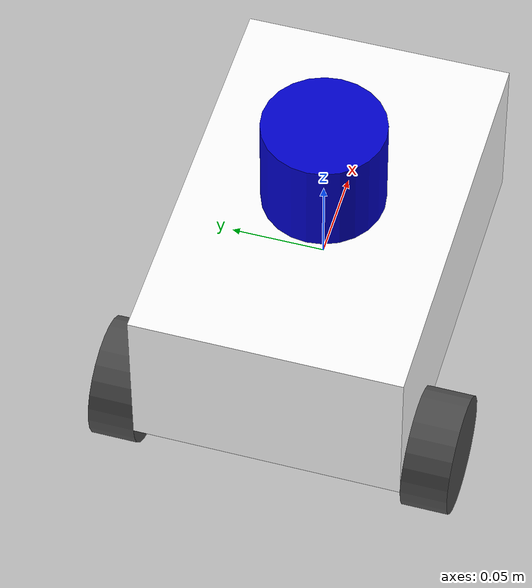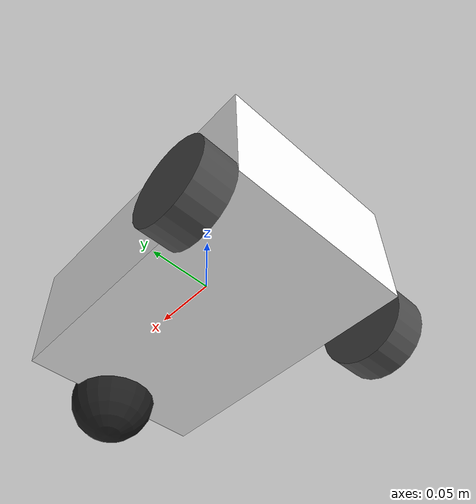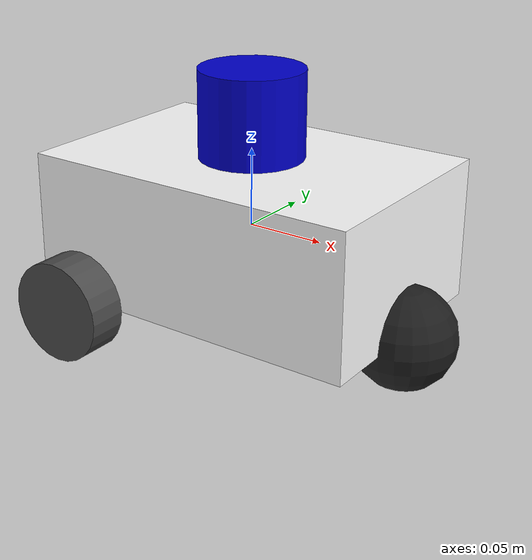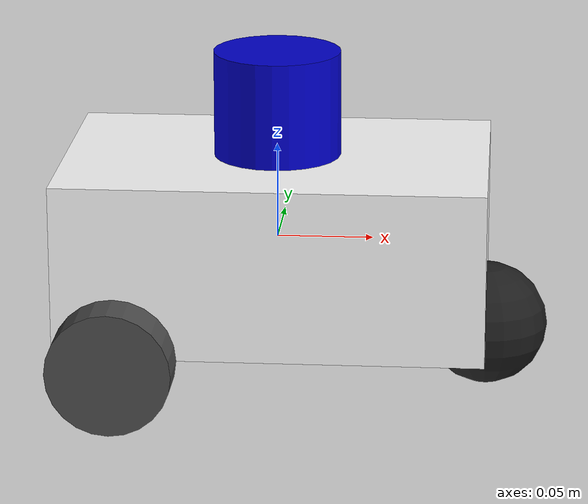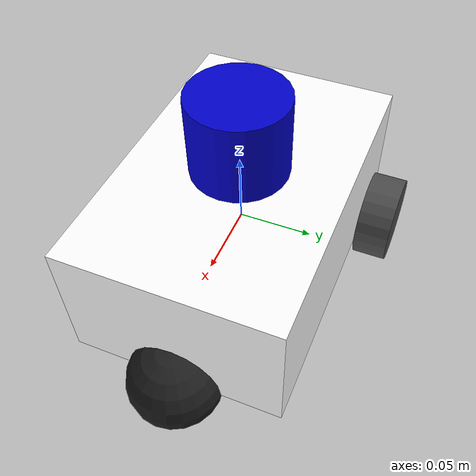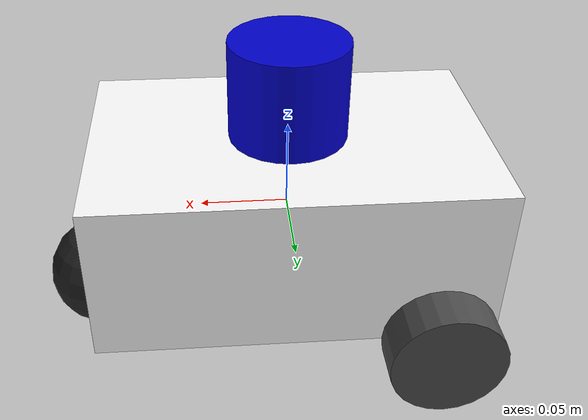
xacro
<?xml version="1.0"?>
<robot name="fourWD" xmlns:xacro="http://www.ros.org/wiki/xacro">

	<xacro:arg name="with_cam" default="true" />
	<xacro:arg name="with_fisheyes" default="false" />
	<xacro:arg name="with_ydlidar" default="true" />

	<xacro:arg name="cam_x" default="0" />
	<xacro:arg name="cam_y" default="0" />
	<xacro:arg name="cam_z" default="0" />
	<xacro:arg name="cam_roll" default="0" />
	<xacro:arg name="cam_pitch" default="0" />
	<xacro:arg name="cam_yaw" default="0" />
	<xacro:arg name="cam_W" default="320" />
	<xacro:arg name="cam_H" default="240" />
	<xacro:arg name="cam_focal" default="3.6" />
	<xacro:arg name="cam_hfov" default="1.3962634" />
  <xacro:arg name="ydlidar_ray_max_range" default="0.50" />
<!-- above is not overwriting please check again : ydlidar_ray_max_range. may be change to arg-->

  <xacro:include filename="$(find catabot_gazebo_simulation)/urdf/differential_drive_base.urdf.xacro" />
  <xacro:include filename="$(find catabot_gazebo_simulation)/urdf/fisheyes.urdf.xacro" />
  <xacro:include filename="$(find catabot_gazebo_simulation)/urdf/ydlidar.urdf.xacro" />
  <xacro:include filename="$(find catabot_gazebo_simulation)/urdf/cam.urdf.xacro" />

<!-- Defining the colors used in this robot -->
  <material name="Black">
    <color rgba="0.0 0.0 0.0 1.0"/>
  </material>

  <material name="Red">
    <color rgba="1.0 0.0 0.0 1.0"/>
  </material>

  <material name="White">
    <color rgba="1.0 1.0 1.0 1.0"/>
  </material>

  <material name="Yellow">
    <color rgba="0.0 1.0 1.0 1.0"/>
  </material>

  <material name="Blue">
    <color rgba="0.0 0.0 0.8 1.0"/>
  </material>

  <!-- PROPERTY LIST -->
  <!--All units in m-kg-s-radians unit system -->
  <property name="M_PI" value="3.1415926535897931" />
  <property name="M_PI_2" value="1.570796327" />
  <property name="M_PI_4" value="0.78539816339" />
  <property name="DEG_TO_RAD" value="0.017453293" />

  <!-- Main body length, width and height -->
  <!-- Main Body Box base   -->
  <property name="base_length" value="0.22" />
  <property name="base_width" value="0.145" />
  <property name="base_height" value="0.09" />
  <property name="base_mass" value="0.7" /> <!-- in kg-->

  <!-- Wheels -->
  <property name="wheel_radius" value="0.032" />
  <property name="wheel_height" value="0.025" />
  <property name="wheel_mass" value="0.03" /> --> <!-- in kg-->

  <!-- Macro for calculating inertia of cylinder -->
  <macro name="cylinder_inertia" params="m r h">
    <inertia  ixx="${m*(3*r*r+h*h)/12}" ixy = "0" ixz = "0"
              iyy="${m*(3*r*r+h*h)/12}" iyz = "0"
              izz="${m*r*r/2}" />
  </macro>

<!-- Macro for calculating inertia of box -->
  <macro name="box_inertia" params="m l w h">
    <inertia  ixx="${m*(w*w+h*h)/12}" ixy = "0" ixz = "0"
              iyy="${m*(l*l+h*h)/12}" iyz = "0"
              izz="${m*(l*l+w*w)/12}" />
  </macro>

  <!-- here starts the real definition of the robot -->
	<differential_drive_base
		base_link="base_link"
		base_length="${base_length}"
		base_width="${base_width}"
		base_height="${base_height}"
		base_mass="${base_mass}"
		wheel_radius="${wheel_radius}"
		wheel_height="${wheel_height}"
		wheel_mass="${wheel_mass}"/>

	<xacro:if value="$(arg with_fisheyes)">
		<fisheyes parent="base_link" x="0" y="0" z="${base_height/2}" roll="0" pitch="0" yaw="0"/>
	</xacro:if>

	<xacro:if value="$(arg with_ydlidar)">
		<ydlidar parent="base_link" x="0" y="0" z="${base_height/2}" roll="0" pitch="0" yaw="0"/>
	</xacro:if>

	<xacro:if value="$(arg with_cam)">
		<cam parent="base_link"
			x="$(arg cam_x)"
			y="$(arg cam_y)"
			z="${$(arg cam_z)+base_height/2}"
			roll="$(arg cam_roll)"
			pitch="$(arg cam_pitch)"
			yaw="$(arg cam_yaw)"
			W="$(arg cam_W)"
			H="$(arg cam_H)"
			hfov="$(arg cam_hfov)"
			focal="$(arg cam_focal)"
		/>

	</xacro:if>

</robot>

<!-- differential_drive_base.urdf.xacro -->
<robot name="differential_drive_base" xmlns:xacro="http://www.ros.org/wiki/xacro">

  <!-- properties -->
  <property name="cam_side" value="0.03" />

  <property name="M_PI" value="3.1415926535897931" />
  <property name="M_PI_2" value="1.570796327" />
  <property name="M_PI_4" value="0.78539816339" />

  <!-- Macro for calculating inertia of cylinder -->
  <macro name="cylinder_inertia" params="m r h">
    <inertia  ixx="${m*(3*r*r+h*h)/12}" ixy = "0" ixz = "0"
              iyy="${m*(3*r*r+h*h)/12}" iyz = "0"
              izz="${m*r*r/2}" />
  </macro>

<!-- Macro for calculating inertia of box -->
  <macro name="box_inertia" params="m l w h">
    <inertia  ixx="${m*(w*w+h*h)/12}" ixy = "0" ixz = "0"
              iyy="${m*(l*l+h*h)/12}" iyz = "0"
              izz="${m*(l*l+w*w)/12}" />
  </macro>

  <xacro:macro name="differential_drive_base" params="base_link base_length base_width base_height base_mass wheel_height wheel_radius wheel_mass">

  <!-- BASE-LINK -->
  <!--Actual body/chassis of the robot-->
  <link name="${base_link}">
    <inertial>
      <mass value="${base_mass}" />
      <origin xyz="0 0 0" />
      <!--The 3x3 rotational inertia matrix. -->
        <box_inertia  m="${base_mass}" l="${base_length}" w="${base_width}" h="${base_height}" />

    </inertial>
    <visual>
      <origin xyz="0 0 0" rpy="0 0 0" />
      <geometry>
         <box size="${base_length} ${base_width} ${base_height}"/>
      </geometry>
      <material name="White" />
    </visual>
    <collision>
      <origin xyz="0 0 0" rpy="0 0 0 " />
      <geometry>
         <box size="${base_length} ${base_width} ${base_height}"/>
      </geometry>
    </collision>
  </link>
  <gazebo reference="${base_link}">
    <material>Gazebo/White</material>
    <turnGravityOff>false</turnGravityOff>
  </gazebo>

	<!-- caster wheel -->
	<link name="caster_link">
    <collision>
      <origin xyz="0 0 0" rpy="0 0 0"/>
      <geometry>
        <sphere radius="0.032"/>
      </geometry>
    </collision>
    <visual>
      <origin xyz="0 0 0" rpy="0 0 0" />
      <geometry>
        <sphere radius="0.032"/>
      </geometry>
      <material name="black" />
    </visual>
  </link>

  <gazebo reference="caster_link">
      <mu1 value="0.0"/>
      <mu2 value="0.0"/>
    <material>Gazebo/black</material>
    <turnGravityOff>false</turnGravityOff>
  </gazebo>

  <joint name="caster_joint" type="fixed">
    <origin xyz="${base_length/2} 0 ${-base_height/2}" rpy="0 0 0" />
    <parent link="${base_link}"/>
    <child link="caster_link" />
  </joint>

	<!-- RIGHT WHEEL -->
  <link name="back_right_wheel">
    <visual>
      <origin xyz="0 0 0" rpy="0 ${M_PI/2} ${M_PI/2}" />
      <geometry>
        <cylinder length="${wheel_height}" radius="${wheel_radius}" />
      </geometry>
      <material name="DarkGray" />
    </visual>
    <collision>
      <origin xyz="0 0 0" rpy="0 ${M_PI/2} ${M_PI/2}" />
      <geometry>
        <cylinder length="${wheel_height}" radius="${wheel_radius}" />
      </geometry>
    </collision>
    <inertial>
      <mass value="${wheel_mass}" />
      <origin xyz="0 0 0" rpy="0 ${M_PI/2} ${M_PI/2}" />
      <cylinder_inertia  m="${wheel_mass}" r="${wheel_radius}" h="${wheel_height}" />
    </inertial>
  </link>

  <gazebo reference="back_right_wheel">
    <mu1 value="1.0"/>
    <mu2 value="1.0"/>
    <material>Gazebo/Grey</material>
    <turnGravityOff>false</turnGravityOff>
  </gazebo>

  <joint name="back_right_wheel_joint" type="continuous">
    <parent link="${base_link}"/>
    <child link="back_right_wheel"/>
    <origin xyz="${-base_length/2+wheel_radius} ${-base_width/2-wheel_height/2} ${-base_height/2}" rpy="0 0 0" />
    <axis xyz="0 1 0" rpy="0 0 0" />
    <limit effort="1000" velocity="1000"/>
    <joint_properties damping="0.0" friction="0.0"/>
  </joint>

	<!-- LEFT WHEEL -->
  <link name="back_left_wheel">
    <visual>
      <origin xyz="0 0 0" rpy="0 ${M_PI/2} ${M_PI/2}" />
      <geometry>
        <cylinder length="${wheel_height}" radius="${wheel_radius}" />
      </geometry>
      <material name="DarkGray" />
    </visual>
    <collision>
      <origin xyz="0 0 0" rpy="0 ${M_PI/2} ${M_PI/2}" />
      <geometry>
        <cylinder length="${wheel_height}" radius="${wheel_radius}" />
      </geometry>
    </collision>
    <inertial>
      <mass value="${wheel_mass}" />
      <origin xyz="0 0 0" rpy="0 ${M_PI/2} ${M_PI/2}" />
      <cylinder_inertia  m="${wheel_mass}" r="${wheel_radius}" h="${wheel_height}" />
    </inertial>
  </link>

  <gazebo reference="back_left_wheel">
    <mu1 value="1.0"/>
    <mu2 value="1.0"/>
    <material>Gazebo/Grey</material>
    <turnGravityOff>false</turnGravityOff>
  </gazebo>

  <joint name="back_left_wheel_joint" type="continuous">
    <parent link="${base_link}"/>
    <child link="back_left_wheel"/>
    <origin xyz="${-base_length/2+wheel_radius} ${base_width/2+wheel_height/2} ${-base_height/2}" rpy="0 0 0" />
    <axis xyz="0 1 0" rpy="0 0 0" />
    <limit effort="100" velocity="100"/>
    <joint_properties damping="0.0" friction="0.0"/>
  </joint>

<gazebo>
  <!-- differential drive controller (for two wheels) -->
	<plugin name="differential_drive_controller" filename="libgazebo_ros_diff_drive.so">

    <updateRate>10</updateRate>
    <leftJoint>back_left_wheel_joint</leftJoint>
    <rightJoint>back_right_wheel_joint</rightJoint>
    <wheelSeparation>${base_width+2*wheel_height}</wheelSeparation>
    <wheelDiameter>${2*wheel_radius}</wheelDiameter>
    <wheelAcceleration>1.8</wheelAcceleration>
    <wheelTorque>200</wheelTorque>
    <commandTopic>cmd_vel</commandTopic>
    <odometryTopic>odom</odometryTopic>
    <odometryFrame>odom</odometryFrame>
    <robotBaseFrame>base_footprint</robotBaseFrame>
    <!-- Odometry source, 0 for ENCODER, 1 for WORLD, defaults to WORLD -->
    <odometrySource>1</odometrySource>
    <publishWheelTF>false</publishWheelTF>
    <publishOdom>true</publishOdom>
    <publishWheelJointState>false</publishWheelJointState>
    <legacyMode>false</legacyMode>
  </plugin>

  <plugin name="imu_plugin" filename="libgazebo_ros_imu.so">
    <alwaysOn>true</alwaysOn>
    <bodyName>${base_link}</bodyName>
    <topicName>imu</topicName>
    <serviceName>imu_service</serviceName>
    <gaussianNoise>0.0</gaussianNoise>
    <updateRate>20.0</updateRate>
  </plugin>
</gazebo>

  </xacro:macro>
</robot>

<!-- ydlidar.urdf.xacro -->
<robot name="ydlidar" xmlns:xacro="http://www.ros.org/wiki/xacro">

  <!-- properties -->
  <!-- ydlidar Laser scanner -->
  <property name="ydlidar_radius" value="0.033" />
  <property name="ydlidar_height" value="0.055" />
  <property name="ydlidar_ray_origin_height" value="0.0175" />
  <property name="ydlidar_ray_max_range" value="5.0" />

  <property name="M_PI" value="3.1415926535897931" />
  <property name="M_PI_2" value="1.570796327" />
  <property name="M_PI_4" value="0.78539816339" />

  <xacro:macro name="ydlidar" params="parent x y z roll pitch yaw"> <!--fb : front, back ; lr: left, right -->

<!-- ydlidar laser sensor -->
<link name="ydlidar_link">
    <collision>
      <origin xyz="0 0 0" rpy="0 0 0"/>
      <geometry>
        <cylinder length="${ydlidar_height}" radius="${ydlidar_radius}"/>
      </geometry>
    </collision>
    <visual>
      <origin xyz="0 0 0" rpy="0 0 0" />
      <geometry>
        <cylinder length="${ydlidar_height}" radius="${ydlidar_radius}"/>
      </geometry>
      <material name="Blue" />
    </visual>
  </link>

  <gazebo reference="ydlidar_link">
    <material>Gazebo/Blue</material>
    <turnGravityOff>false</turnGravityOff>
    <sensor type="ray" name="head_ydlidar_sensor">
      <pose>0 0 ${ydlidar_ray_origin_height} 0 0</pose>
      <visualize>false</visualize>
      <update_rate>8.3</update_rate>
      <ray>
        <scan>
          <horizontal>
            <samples>720</samples>
            <resolution>1</resolution>
            <min_angle>-3.14159274101</min_angle>
            <max_angle>3.14159274101</max_angle>
          </horizontal>
        </scan>
        <range>
          <min>0.10</min>
          <max>${ydlidar_ray_max_range}</max>
          <resolution>0.01</resolution>
        </range>
        <noise>
          <type>gaussian</type>
          <mean>0.0</mean>
          <stddev>0.01</stddev>
        </noise>
      </ray>
      <plugin name="gazebo_ros_head_ydlidar_controller" filename="libgazebo_ros_laser.so">
        <topicName>scan</topicName>
        <frameName>ydlidar_link</frameName>
        <robotBaseFrame>base_footprint</robotBaseFrame>
      </plugin>
    </sensor>
  </gazebo>

  <joint name="ydlidar_joint" type="fixed">
    <origin xyz="${x} ${y} ${z+ydlidar_height/2}" rpy="${roll} ${pitch} ${yaw}" />
    <parent link="${parent}"/>
    <child link="ydlidar_link" />
  </joint>

  </xacro:macro>
</robot>

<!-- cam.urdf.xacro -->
<robot name="cam" xmlns:xacro="http://www.ros.org/wiki/xacro">

  <!-- properties -->
  <property name="cam_side" value="0.03" />

  <property name="M_PI" value="3.1415926535897931" />
  <property name="M_PI_2" value="1.570796327" />
  <property name="M_PI_4" value="0.78539816339" />

  <xacro:macro name="cam" params="parent x y z roll pitch yaw W H hfov focal"> <!--fb : front, back ; lr: left, right -->

	<!-- camera sensor -->
	<link name="cam_link">
    <collision>
      <origin xyz="0 0 0" rpy="0 0 0"/>
      <geometry>
				<box size="${cam_side} ${cam_side} ${cam_side}"/>
      </geometry>
    </collision>
    <visual>
      <origin xyz="0 0 0" rpy="0 0 0" />
      <geometry>
				<box size="${cam_side} ${cam_side} ${cam_side}"/>
      </geometry>
      <material name="Blue" />
    </visual>
  </link>

  <gazebo reference="cam_link">
    <material>Gazebo/Blue</material>
    <turnGravityOff>false</turnGravityOff>
    <sensor name='camera' type='camera'>
    <camera name="head">
			<save enabled = "true">
				<path>/tmp/camera_save</path>
			</save>
		  <horizontal_fov>${hfov}</horizontal_fov>
		  <image>
				<width>${W}</width>
				<height>${H}</height>
				<format>R8G8B8</format>
		  </image>
		  <clip>
		    <near>0.02</near>
		    <far>300</far>
		  </clip>
			<lens>
		    <!-- type element is mandatory -->
		    <type>custom</type>
		    <!-- manually defined mapping function r = c1*f*fun(theta/c2 + c3) -->
		    <!-- More information here: https://en.wikipedia.org/wiki/Fisheye_lens#Mapping_function -->
		    <custom_function>
		      <c1>1.05</c1>
		      <!-- linear scaling -->
		      <c2>4</c2>
		      <!-- angle scaling -->
		      <f>${focal}</f>
		      <!-- one more scaling parameter -->
		      <fun>tan</fun>
		      <!-- one of sin,tan,id -->
		    </custom_function>
		    <!-- if it is set to `true` your horizontal FOV will ramain as defined -->
		    <!-- othervise it depends on lens type and custom function, if there is one -->
		    <scale_to_hfov>true</scale_to_hfov>
		    <!-- clip everything that is outside of this angle -->
		    <cutoff_angle>3.1415</cutoff_angle>
		    <!-- resolution of the cubemap texture, the highter it is - the sharper is your image -->
		    <env_texture_size>512</env_texture_size>
		  </lens>
    </camera>
    <always_on>1</always_on>
    <update_rate>5</update_rate>
    <visualize>1</visualize>
    <plugin name="camera_controller" filename="libgazebo_ros_camera.so">
    <alwaysOn>true</alwaysOn>
    <updateRate>0.0</updateRate>
    <cameraName>iris/camera</cameraName>
    <imageTopicName>image_raw</imageTopicName>
    <cameraInfoTopicName>camera_info</cameraInfoTopicName>
    <frameName>camera_link</frameName>
    <hackBaseline>0.07</hackBaseline>
    <distortionK1>0.0</distortionK1>
    <distortionK2>0.0</distortionK2>
    <distortionK3>0.0</distortionK3>
    <distortionT1>0.0</distortionT1>
    <distortionT2>0.0</distortionT2>
  </plugin>
  </sensor>
  </gazebo>

  <joint name="cam_joint" type="fixed">
    <origin xyz="${x} ${y} ${z+cam_side/2}" rpy="${roll} ${pitch} ${yaw}" />
    <parent link="${parent}"/>
    <child link="cam_link" />
  </joint>

  </xacro:macro>
</robot>
